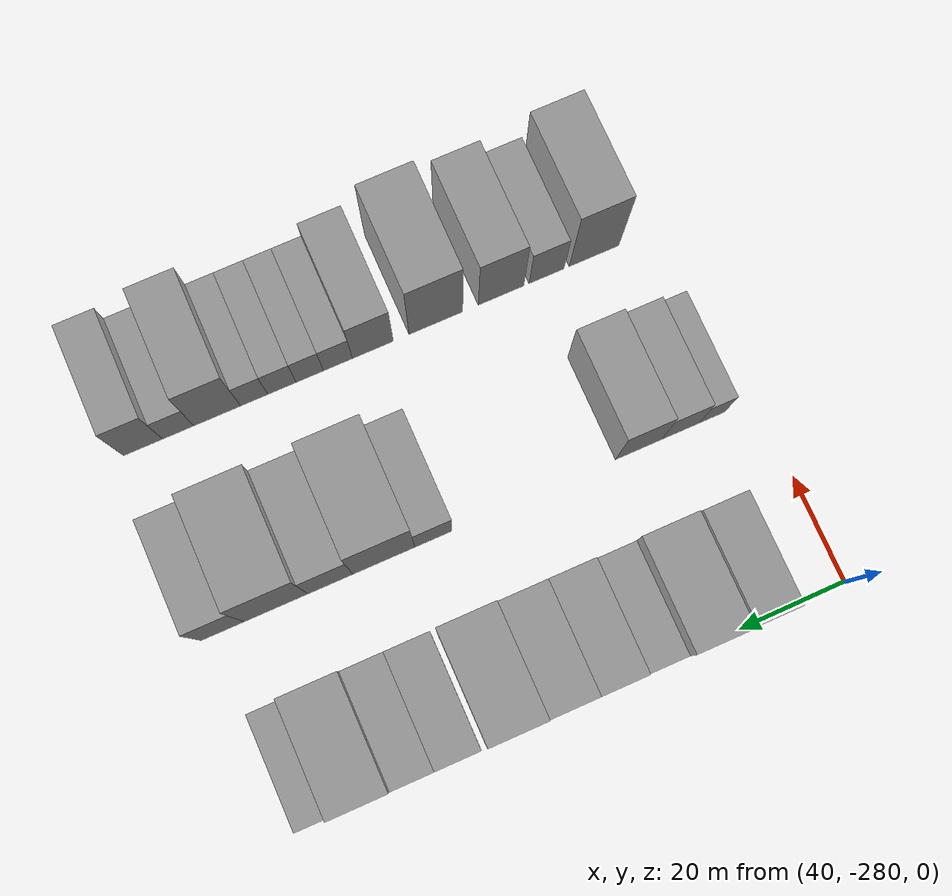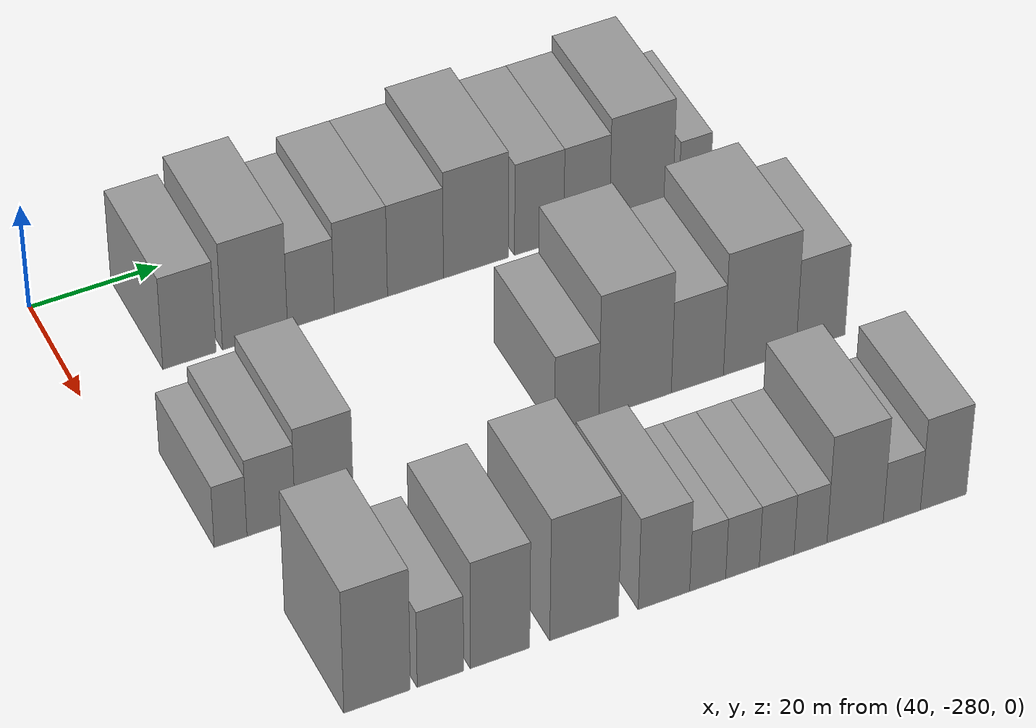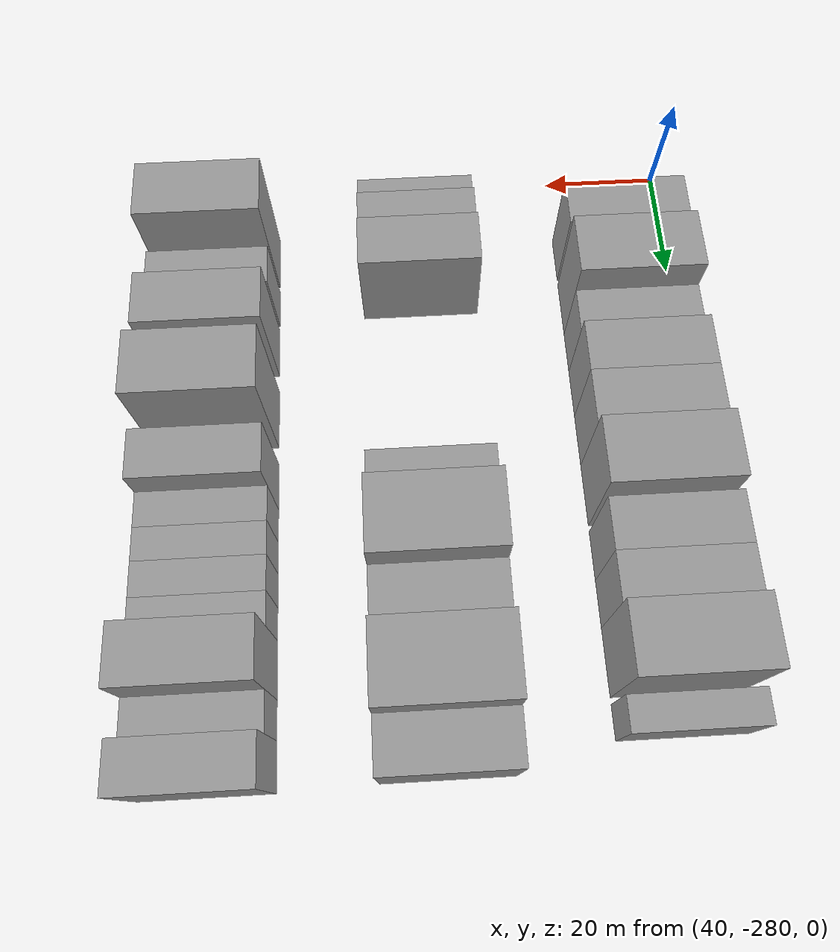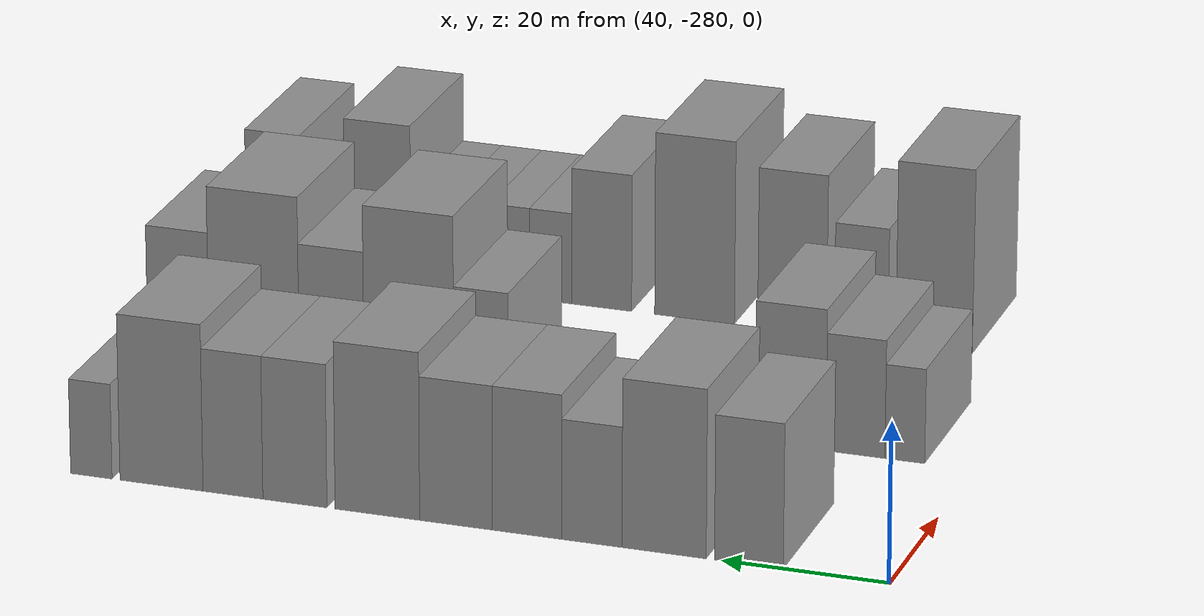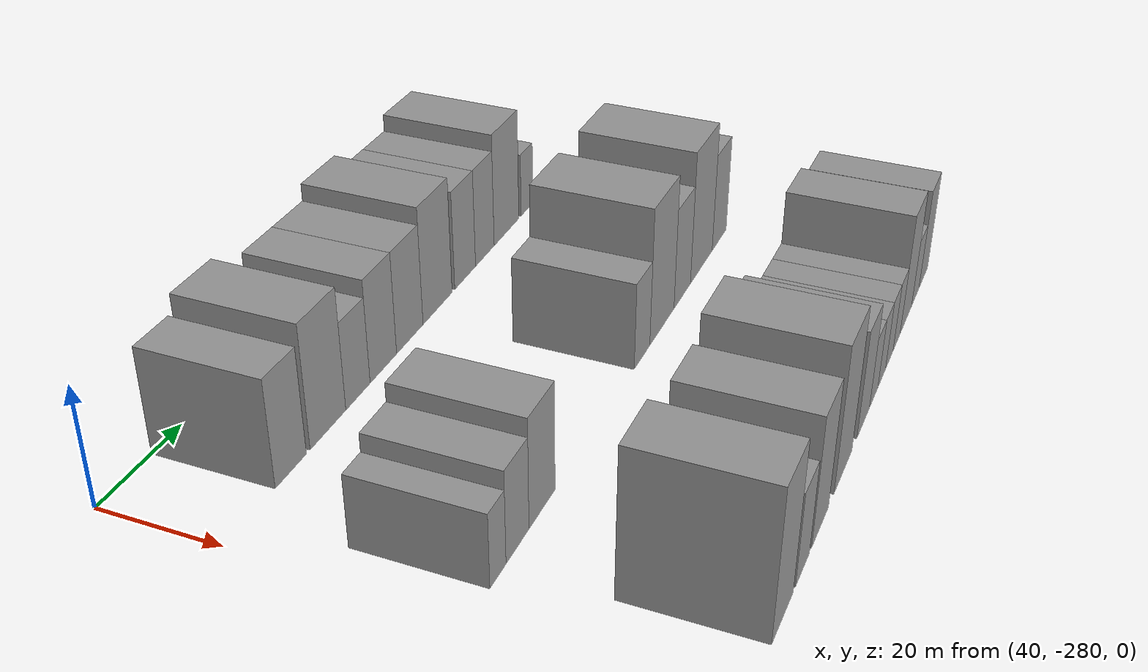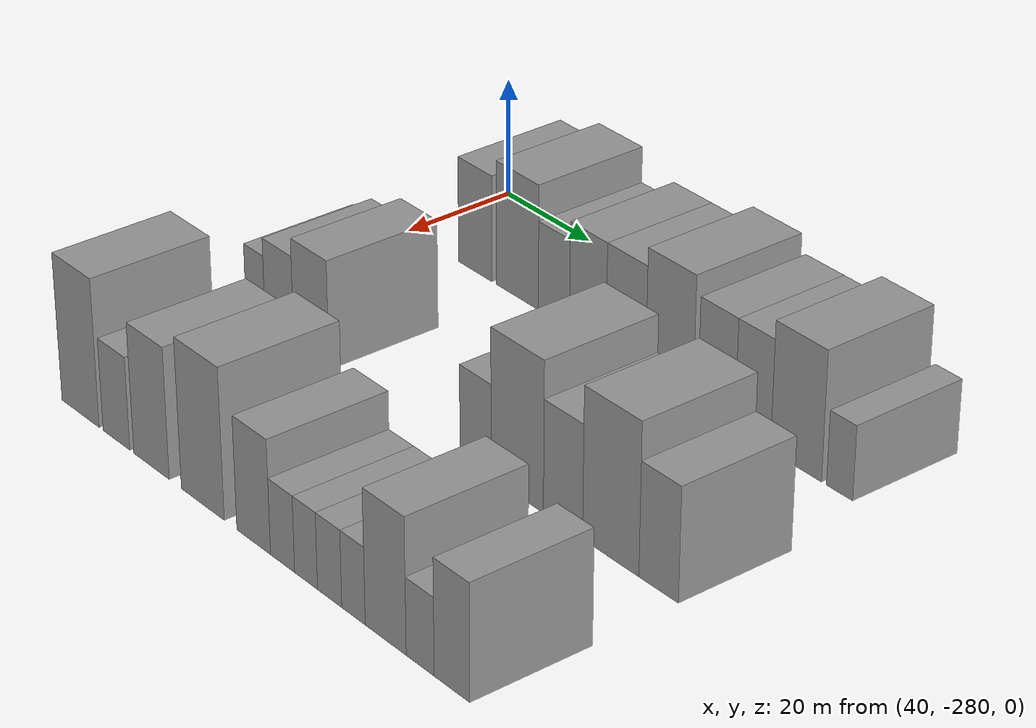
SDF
<sdf version="1.6">
 <world name="default">
  <model name="building_11">
   <static>1</static>
   <pose>50.0000 -263.2379 0 0.000000 0.000000 0.000000</pose>
   <link name="link">
    <pose>0 0 9.00 0 0 0</pose>
    <collision name="collision"><geometry><box><size>20.0000 8.2379 18.0000</size></box></geometry></collision>
    <visual name="visual">
     <cast_shadows>0</cast_shadows>
     <geometry><box><size>20.0000 8.2379 18.0000</size></box></geometry>
     <material>
      <script>
       <uri>model://grey_wall/materials/scripts</uri>
       <uri>model://grey_wall/materials/textures</uri>
       <name>vrc/grey_wall</name>
      </script>
     </material>
    </visual>
   </link>
  </model>
  <model name="building_12">
   <static>1</static>
   <pose>50.0000 -253.0416 0 0.000000 0.000000 0.000000</pose>
   <link name="link">
    <pose>0 0 10.50 0 0 0</pose>
    <collision name="collision"><geometry><box><size>20.0000 10.1548 21.0000</size></box></geometry></collision>
    <visual name="visual">
     <cast_shadows>0</cast_shadows>
     <geometry><box><size>20.0000 10.1548 21.0000</size></box></geometry>
     <material>
      <script>
       <uri>model://grey_wall/materials/scripts</uri>
       <uri>model://grey_wall/materials/textures</uri>
       <name>vrc/grey_wall</name>
      </script>
     </material>
    </visual>
   </link>
  </model>
  <model name="building_13">
   <static>1</static>
   <pose>50.0000 -244.2923 0 0.000000 0.000000 0.000000</pose>
   <link name="link">
    <pose>0 0 7.50 0 0 0</pose>
    <collision name="collision"><geometry><box><size>20.0000 7.3437 15.0000</size></box></geometry></collision>
    <visual name="visual">
     <cast_shadows>0</cast_shadows>
     <geometry><box><size>20.0000 7.3437 15.0000</size></box></geometry>
     <material>
      <script>
       <uri>model://grey_wall/materials/scripts</uri>
       <uri>model://grey_wall/materials/textures</uri>
       <name>vrc/grey_wall</name>
      </script>
     </material>
    </visual>
   </link>
  </model>
  <model name="building_14">
   <static>1</static>
   <pose>50.0000 -236.4029 0 0.000000 0.000000 0.000000</pose>
   <link name="link">
    <pose>0 0 9.00 0 0 0</pose>
    <collision name="collision"><geometry><box><size>20.0000 8.4350 18.0000</size></box></geometry></collision>
    <visual name="visual">
     <cast_shadows>0</cast_shadows>
     <geometry><box><size>20.0000 8.4350 18.0000</size></box></geometry>
     <material>
      <script>
       <uri>model://grey_wall/materials/scripts</uri>
       <uri>model://grey_wall/materials/textures</uri>
       <name>vrc/grey_wall</name>
      </script>
     </material>
    </visual>
   </link>
  </model>
  <model name="building_15">
   <static>1</static>
   <pose>50.0000 -227.7180 0 0.000000 0.000000 0.000000</pose>
   <link name="link">
    <pose>0 0 9.00 0 0 0</pose>
    <collision name="collision"><geometry><box><size>20.0000 8.9350 18.0000</size></box></geometry></collision>
    <visual name="visual">
     <cast_shadows>0</cast_shadows>
     <geometry><box><size>20.0000 8.9350 18.0000</size></box></geometry>
     <material>
      <script>
       <uri>model://grey_wall/materials/scripts</uri>
       <uri>model://grey_wall/materials/textures</uri>
       <name>vrc/grey_wall</name>
      </script>
     </material>
    </visual>
   </link>
  </model>
  <model name="building_16">
   <static>1</static>
   <pose>50.0000 -218.0276 0 0.000000 0.000000 0.000000</pose>
   <link name="link">
    <pose>0 0 10.50 0 0 0</pose>
    <collision name="collision"><geometry><box><size>20.0000 10.4457 21.0000</size></box></geometry></collision>
    <visual name="visual">
     <cast_shadows>0</cast_shadows>
     <geometry><box><size>20.0000 10.4457 21.0000</size></box></geometry>
     <material>
      <script>
       <uri>model://grey_wall/materials/scripts</uri>
       <uri>model://grey_wall/materials/textures</uri>
       <name>vrc/grey_wall</name>
      </script>
     </material>
    </visual>
   </link>
  </model>
  <model name="building_17">
   <static>1</static>
   <pose>50.0000 -207.8202 0 0.000000 0.000000 0.000000</pose>
   <link name="link">
    <pose>0 0 9.00 0 0 0</pose>
    <collision name="collision"><geometry><box><size>20.0000 7.9692 18.0000</size></box></geometry></collision>
    <visual name="visual">
     <cast_shadows>0</cast_shadows>
     <geometry><box><size>20.0000 7.9692 18.0000</size></box></geometry>
     <material>
      <script>
       <uri>model://grey_wall/materials/scripts</uri>
       <uri>model://grey_wall/materials/textures</uri>
       <name>vrc/grey_wall</name>
      </script>
     </material>
    </visual>
   </link>
  </model>
  <model name="building_18">
   <static>1</static>
   <pose>50.0000 -200.0964 0 0.000000 0.000000 0.000000</pose>
   <link name="link">
    <pose>0 0 9.00 0 0 0</pose>
    <collision name="collision"><geometry><box><size>20.0000 7.4784 18.0000</size></box></geometry></collision>
    <visual name="visual">
     <cast_shadows>0</cast_shadows>
     <geometry><box><size>20.0000 7.4784 18.0000</size></box></geometry>
     <material>
      <script>
       <uri>model://grey_wall/materials/scripts</uri>
       <uri>model://grey_wall/materials/textures</uri>
       <name>vrc/grey_wall</name>
      </script>
     </material>
    </visual>
   </link>
  </model>
  <model name="building_19">
   <static>1</static>
   <pose>50.0000 -191.1372 0 0.000000 0.000000 0.000000</pose>
   <link name="link">
    <pose>0 0 10.50 0 0 0</pose>
    <collision name="collision"><geometry><box><size>20.0000 10.4399 21.0000</size></box></geometry></collision>
    <visual name="visual">
     <cast_shadows>0</cast_shadows>
     <geometry><box><size>20.0000 10.4399 21.0000</size></box></geometry>
     <material>
      <script>
       <uri>model://grey_wall/materials/scripts</uri>
       <uri>model://grey_wall/materials/textures</uri>
       <name>vrc/grey_wall</name>
      </script>
     </material>
    </visual>
   </link>
  </model>
  <model name="building_20">
   <static>1</static>
   <pose>50.0000 -182.3036 0 0.000000 0.000000 0.000000</pose>
   <link name="link">
    <pose>0 0 6.00 0 0 0</pose>
    <collision name="collision"><geometry><box><size>20.0000 5.2275 12.0000</size></box></geometry></collision>
    <visual name="visual">
     <cast_shadows>0</cast_shadows>
     <geometry><box><size>20.0000 5.2275 12.0000</size></box></geometry>
     <material>
      <script>
       <uri>model://grey_wall/materials/scripts</uri>
       <uri>model://grey_wall/materials/textures</uri>
       <name>vrc/grey_wall</name>
      </script>
     </material>
    </visual>
   </link>
  </model>
  <model name="building_92">
   <static>1</static>
   <pose>85.0000 -271.5941 0 0.000000 0.000000 0.000000</pose>
   <link name="link">
    <pose>0 0 6.00 0 0 0</pose>
    <collision name="collision"><geometry><box><size>20.0000 4.9048 12.0000</size></box></geometry></collision>
    <visual name="visual">
     <cast_shadows>0</cast_shadows>
     <geometry><box><size>20.0000 4.9048 12.0000</size></box></geometry>
     <material>
      <script>
       <uri>model://grey_wall/materials/scripts</uri>
       <uri>model://grey_wall/materials/textures</uri>
       <name>vrc/grey_wall</name>
      </script>
     </material>
    </visual>
   </link>
  </model>
  <model name="building_93">
   <static>1</static>
   <pose>85.0000 -265.5024 0 0.000000 0.000000 0.000000</pose>
   <link name="link">
    <pose>0 0 7.50 0 0 0</pose>
    <collision name="collision"><geometry><box><size>20.0000 7.2786 15.0000</size></box></geometry></collision>
    <visual name="visual">
     <cast_shadows>0</cast_shadows>
     <geometry><box><size>20.0000 7.2786 15.0000</size></box></geometry>
     <material>
      <script>
       <uri>model://grey_wall/materials/scripts</uri>
       <uri>model://grey_wall/materials/textures</uri>
       <name>vrc/grey_wall</name>
      </script>
     </material>
    </visual>
   </link>
  </model>
  <model name="building_94">
   <static>1</static>
   <pose>85.0000 -257.4633 0 0.000000 0.000000 0.000000</pose>
   <link name="link">
    <pose>0 0 9.00 0 0 0</pose>
    <collision name="collision"><geometry><box><size>20.0000 8.7997 18.0000</size></box></geometry></collision>
    <visual name="visual">
     <cast_shadows>0</cast_shadows>
     <geometry><box><size>20.0000 8.7997 18.0000</size></box></geometry>
     <material>
      <script>
       <uri>model://grey_wall/materials/scripts</uri>
       <uri>model://grey_wall/materials/textures</uri>
       <name>vrc/grey_wall</name>
      </script>
     </material>
    </visual>
   </link>
  </model>
  <model name="building_95">
   <static>1</static>
   <pose>85.0000 -218.6229 0 0.000000 0.000000 0.000000</pose>
   <link name="link">
    <pose>0 0 7.50 0 0 0</pose>
    <collision name="collision"><geometry><box><size>20.0000 6.9604 15.0000</size></box></geometry></collision>
    <visual name="visual">
     <cast_shadows>0</cast_shadows>
     <geometry><box><size>20.0000 6.9604 15.0000</size></box></geometry>
     <material>
      <script>
       <uri>model://grey_wall/materials/scripts</uri>
       <uri>model://grey_wall/materials/textures</uri>
       <name>vrc/grey_wall</name>
      </script>
     </material>
    </visual>
   </link>
  </model>
  <model name="building_96">
   <static>1</static>
   <pose>85.0000 -209.4043 0 0.000000 0.000000 0.000000</pose>
   <link name="link">
    <pose>0 0 12.00 0 0 0</pose>
    <collision name="collision"><geometry><box><size>20.0000 11.4768 24.0000</size></box></geometry></collision>
    <visual name="visual">
     <cast_shadows>0</cast_shadows>
     <geometry><box><size>20.0000 11.4768 24.0000</size></box></geometry>
     <material>
      <script>
       <uri>model://grey_wall/materials/scripts</uri>
       <uri>model://grey_wall/materials/textures</uri>
       <name>vrc/grey_wall</name>
      </script>
     </material>
    </visual>
   </link>
  </model>
  <model name="building_97">
   <static>1</static>
   <pose>85.0000 -199.5050 0 0.000000 0.000000 0.000000</pose>
   <link name="link">
    <pose>0 0 9.00 0 0 0</pose>
    <collision name="collision"><geometry><box><size>20.0000 8.3219 18.0000</size></box></geometry></collision>
    <visual name="visual">
     <cast_shadows>0</cast_shadows>
     <geometry><box><size>20.0000 8.3219 18.0000</size></box></geometry>
     <material>
      <script>
       <uri>model://grey_wall/materials/scripts</uri>
       <uri>model://grey_wall/materials/textures</uri>
       <name>vrc/grey_wall</name>
      </script>
     </material>
    </visual>
   </link>
  </model>
  <model name="building_98">
   <static>1</static>
   <pose>85.0000 -189.5087 0 0.000000 0.000000 0.000000</pose>
   <link name="link">
    <pose>0 0 12.00 0 0 0</pose>
    <collision name="collision"><geometry><box><size>20.0000 11.6706 24.0000</size></box></geometry></collision>
    <visual name="visual">
     <cast_shadows>0</cast_shadows>
     <geometry><box><size>20.0000 11.6706 24.0000</size></box></geometry>
     <material>
      <script>
       <uri>model://grey_wall/materials/scripts</uri>
       <uri>model://grey_wall/materials/textures</uri>
       <name>vrc/grey_wall</name>
      </script>
     </material>
    </visual>
   </link>
  </model>
  <model name="building_99">
   <static>1</static>
   <pose>85.0000 -179.6926 0 0.000000 0.000000 0.000000</pose>
   <link name="link">
    <pose>0 0 9.00 0 0 0</pose>
    <collision name="collision"><geometry><box><size>20.0000 7.9617 18.0000</size></box></geometry></collision>
    <visual name="visual">
     <cast_shadows>0</cast_shadows>
     <geometry><box><size>20.0000 7.9617 18.0000</size></box></geometry>
     <material>
      <script>
       <uri>model://grey_wall/materials/scripts</uri>
       <uri>model://grey_wall/materials/textures</uri>
       <name>vrc/grey_wall</name>
      </script>
     </material>
    </visual>
   </link>
  </model>
  <model name="building_172">
   <static>1</static>
   <pose>120.0000 -265.0955 0 0.000000 0.000000 0.000000</pose>
   <link name="link">
    <pose>0 0 12.00 0 0 0</pose>
    <collision name="collision"><geometry><box><size>20.0000 9.7425 24.0000</size></box></geometry></collision>
    <visual name="visual">
     <cast_shadows>0</cast_shadows>
     <geometry><box><size>20.0000 9.7425 24.0000</size></box></geometry>
     <material>
      <script>
       <uri>model://grey_wall/materials/scripts</uri>
       <uri>model://grey_wall/materials/textures</uri>
       <name>vrc/grey_wall</name>
      </script>
     </material>
    </visual>
   </link>
  </model>
  <model name="building_173">
   <static>1</static>
   <pose>120.0000 -255.7993 0 0.000000 0.000000 0.000000</pose>
   <link name="link">
    <pose>0 0 7.50 0 0 0</pose>
    <collision name="collision"><geometry><box><size>20.0000 6.8498 15.0000</size></box></geometry></collision>
    <visual name="visual">
     <cast_shadows>0</cast_shadows>
     <geometry><box><size>20.0000 6.8498 15.0000</size></box></geometry>
     <material>
      <script>
       <uri>model://grey_wall/materials/scripts</uri>
       <uri>model://grey_wall/materials/textures</uri>
       <name>vrc/grey_wall</name>
      </script>
     </material>
    </visual>
   </link>
  </model>
  <model name="building_174">
   <static>1</static>
   <pose>120.0000 -246.9511 0 0.000000 0.000000 0.000000</pose>
   <link name="link">
    <pose>0 0 10.50 0 0 0</pose>
    <collision name="collision"><geometry><box><size>20.0000 8.8464 21.0000</size></box></geometry></collision>
    <visual name="visual">
     <cast_shadows>0</cast_shadows>
     <geometry><box><size>20.0000 8.8464 21.0000</size></box></geometry>
     <material>
      <script>
       <uri>model://grey_wall/materials/scripts</uri>
       <uri>model://grey_wall/materials/textures</uri>
       <name>vrc/grey_wall</name>
      </script>
     </material>
    </visual>
   </link>
  </model>
  <model name="building_175">
   <static>1</static>
   <pose>120.0000 -234.3610 0 0.000000 0.000000 0.000000</pose>
   <link name="link">
    <pose>0 0 12.00 0 0 0</pose>
    <collision name="collision"><geometry><box><size>20.0000 10.3339 24.0000</size></box></geometry></collision>
    <visual name="visual">
     <cast_shadows>0</cast_shadows>
     <geometry><box><size>20.0000 10.3339 24.0000</size></box></geometry>
     <material>
      <script>
       <uri>model://grey_wall/materials/scripts</uri>
       <uri>model://grey_wall/materials/textures</uri>
       <name>vrc/grey_wall</name>
      </script>
     </material>
    </visual>
   </link>
  </model>
  <model name="building_176">
   <static>1</static>
   <pose>120.0000 -222.2785 0 0.000000 0.000000 0.000000</pose>
   <link name="link">
    <pose>0 0 9.00 0 0 0</pose>
    <collision name="collision"><geometry><box><size>20.0000 7.8311 18.0000</size></box></geometry></collision>
    <visual name="visual">
     <cast_shadows>0</cast_shadows>
     <geometry><box><size>20.0000 7.8311 18.0000</size></box></geometry>
     <material>
      <script>
       <uri>model://grey_wall/materials/scripts</uri>
       <uri>model://grey_wall/materials/textures</uri>
       <name>vrc/grey_wall</name>
      </script>
     </material>
    </visual>
   </link>
  </model>
  <model name="building_177">
   <static>1</static>
   <pose>120.0000 -215.6015 0 0.000000 0.000000 0.000000</pose>
   <link name="link">
    <pose>0 0 6.00 0 0 0</pose>
    <collision name="collision"><geometry><box><size>20.0000 5.5230 12.0000</size></box></geometry></collision>
    <visual name="visual">
     <cast_shadows>0</cast_shadows>
     <geometry><box><size>20.0000 5.5230 12.0000</size></box></geometry>
     <material>
      <script>
       <uri>model://grey_wall/materials/scripts</uri>
       <uri>model://grey_wall/materials/textures</uri>
       <name>vrc/grey_wall</name>
      </script>
     </material>
    </visual>
   </link>
  </model>
  <model name="building_178">
   <static>1</static>
   <pose>120.0000 -210.2576 0 0.000000 0.000000 0.000000</pose>
   <link name="link">
    <pose>0 0 6.00 0 0 0</pose>
    <collision name="collision"><geometry><box><size>20.0000 5.1648 12.0000</size></box></geometry></collision>
    <visual name="visual">
     <cast_shadows>0</cast_shadows>
     <geometry><box><size>20.0000 5.1648 12.0000</size></box></geometry>
     <material>
      <script>
       <uri>model://grey_wall/materials/scripts</uri>
       <uri>model://grey_wall/materials/textures</uri>
       <name>vrc/grey_wall</name>
      </script>
     </material>
    </visual>
   </link>
  </model>
  <model name="building_179">
   <static>1</static>
   <pose>120.0000 -204.9850 0 0.000000 0.000000 0.000000</pose>
   <link name="link">
    <pose>0 0 6.00 0 0 0</pose>
    <collision name="collision"><geometry><box><size>20.0000 5.3804 12.0000</size></box></geometry></collision>
    <visual name="visual">
     <cast_shadows>0</cast_shadows>
     <geometry><box><size>20.0000 5.3804 12.0000</size></box></geometry>
     <material>
      <script>
       <uri>model://grey_wall/materials/scripts</uri>
       <uri>model://grey_wall/materials/textures</uri>
       <name>vrc/grey_wall</name>
      </script>
     </material>
    </visual>
   </link>
  </model>
  <model name="building_180">
   <static>1</static>
   <pose>120.0000 -199.7356 0 0.000000 0.000000 0.000000</pose>
   <link name="link">
    <pose>0 0 6.00 0 0 0</pose>
    <collision name="collision"><geometry><box><size>20.0000 5.1184 12.0000</size></box></geometry></collision>
    <visual name="visual">
     <cast_shadows>0</cast_shadows>
     <geometry><box><size>20.0000 5.1184 12.0000</size></box></geometry>
     <material>
      <script>
       <uri>model://grey_wall/materials/scripts</uri>
       <uri>model://grey_wall/materials/textures</uri>
       <name>vrc/grey_wall</name>
      </script>
     </material>
    </visual>
   </link>
  </model>
  <model name="building_181">
   <static>1</static>
   <pose>120.0000 -192.7862 0 0.000000 0.000000 0.000000</pose>
   <link name="link">
    <pose>0 0 10.50 0 0 0</pose>
    <collision name="collision"><geometry><box><size>20.0000 8.7804 21.0000</size></box></geometry></collision>
    <visual name="visual">
     <cast_shadows>0</cast_shadows>
     <geometry><box><size>20.0000 8.7804 21.0000</size></box></geometry>
     <material>
      <script>
       <uri>model://grey_wall/materials/scripts</uri>
       <uri>model://grey_wall/materials/textures</uri>
       <name>vrc/grey_wall</name>
      </script>
     </material>
    </visual>
   </link>
  </model>
  <model name="building_182">
   <static>1</static>
   <pose>120.0000 -185.4616 0 0.000000 0.000000 0.000000</pose>
   <link name="link">
    <pose>0 0 6.00 0 0 0</pose>
    <collision name="collision"><geometry><box><size>20.0000 5.8688 12.0000</size></box></geometry></collision>
    <visual name="visual">
     <cast_shadows>0</cast_shadows>
     <geometry><box><size>20.0000 5.8688 12.0000</size></box></geometry>
     <material>
      <script>
       <uri>model://grey_wall/materials/scripts</uri>
       <uri>model://grey_wall/materials/textures</uri>
       <name>vrc/grey_wall</name>
      </script>
     </material>
    </visual>
   </link>
  </model>
  <model name="building_183">
   <static>1</static>
   <pose>120.0000 -178.8788 0 0.000000 0.000000 0.000000</pose>
   <link name="link">
    <pose>0 0 9.00 0 0 0</pose>
    <collision name="collision"><geometry><box><size>20.0000 7.2969 18.0000</size></box></geometry></collision>
    <visual name="visual">
     <cast_shadows>0</cast_shadows>
     <geometry><box><size>20.0000 7.2969 18.0000</size></box></geometry>
     <material>
      <script>
       <uri>model://grey_wall/materials/scripts</uri>
       <uri>model://grey_wall/materials/textures</uri>
       <name>vrc/grey_wall</name>
      </script>
     </material>
    </visual>
   </link>
  </model>
 </world>
</sdf>
